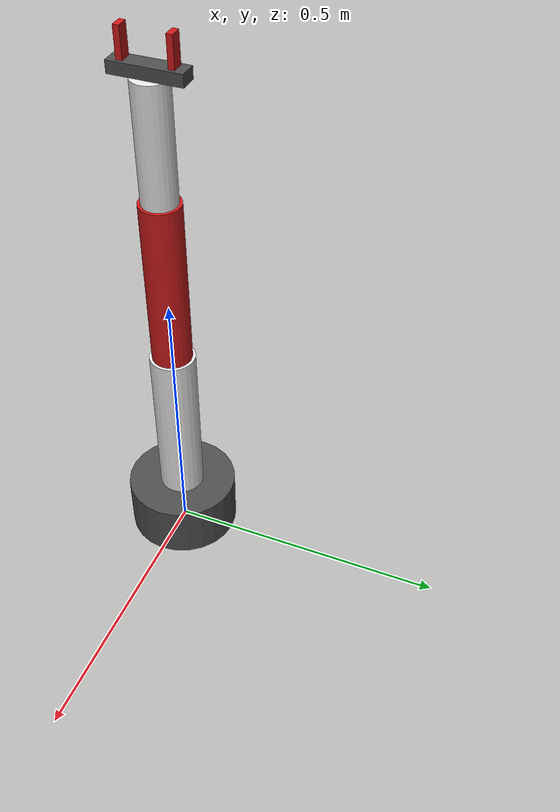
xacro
<?xml version="1.0"?>
<robot xmlns:xacro="http://www.ros.org/wiki/xacro" name="arm_manipulator">
    <xacro:arg name="initial_positions_file" default="initial_positions.yaml" />

    <!-- Import arm_manipulator urdf file -->
    <xacro:include filename="$(find jackrobot)/urdf/roboticarm.urdf" />

    <!-- Import control_xacro -->
    <xacro:include filename="arm_manipulator.ros2_control.xacro" />

    <xacro:arm_manipulator_ros2_control name="FakeSystem" initial_positions_file="$(arg initial_positions_file)"/>
    <gazebo>
    <plugin filename="libgz_ros2_control-system.so" name="gz_ros2_control::GazeboSimROS2ControlPlugin">
      <parameters>$(find jackrobot_moveit_config)/config/ros2_controllers.yaml</parameters>
      <controller_manager_name>controller_manager</controller_manager_name>
    </plugin>
  </gazebo>
</robot>

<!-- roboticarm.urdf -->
<robot name="arm_manipulator">

  <material name="robot_red"><color rgba="0.8 0.1 0.1 1.0"/></material>
  <material name="robot_white"><color rgba="0.9 0.9 0.9 1.0"/></material>
  <material name="robot_grey"><color rgba="0.3 0.3 0.3 1.0"/></material>

  <link name="base_link"/>

  <joint name="base_joint" type="fixed">
    <parent link="base_link"/>
    <child link="arm_base_link"/>
    <origin xyz="0 0 0" rpy="0 0 0"/>
  </joint>

  <link name="arm_base_link">
    <visual>
      <origin xyz="0 0 0.05" rpy="0 0 0"/>
      <geometry><cylinder radius="0.1" length="0.1"/></geometry>
      <material name="robot_grey"/>
    </visual>
    <collision>
      <origin xyz="0 0 0.05" rpy="0 0 0"/>
      <geometry><cylinder radius="0.1" length="0.1"/></geometry>
    </collision>
    <inertial>
      <origin xyz="0 0 0.05" rpy="0 0 0"/>
      <mass value="2.0"/>
      <inertia ixx="0.006667" ixy="0.0" ixz="0.0" iyy="0.006667" iyz="0.0" izz="0.01"/>
    </inertial>
  </link>

  <joint name="arm_0_joint" type="revolute">
    <parent link="arm_base_link"/>
    <child link="link_1"/>
    <origin xyz="0 0 0.1" rpy="0 0 0"/>
    <axis xyz="0 0 1"/>
    <limit lower="-3.1416" upper="3.1416" effort="10.0" velocity="1.5" acceleration="2.0"/>
  </joint>

  <link name="link_1">
    <visual>
      <origin xyz="0 0 0.15" rpy="0 0 0"/>
      <geometry><cylinder radius="0.04" length="0.3"/></geometry>
      <material name="robot_white"/>
    </visual>
    <collision>
      <origin xyz="0 0 0.15" rpy="0 0 0"/>
      <geometry><cylinder radius="0.04" length="0.3"/></geometry>
    </collision>
    <inertial>
      <origin xyz="0 0 0.15" rpy="0 0 0"/>
      <mass value="1.0"/>
      <inertia ixx="0.0079" ixy="0.0" ixz="0.0" iyy="0.0079" iyz="0.0" izz="0.0008"/>
    </inertial>
  </link>

  <joint name="arm_1_joint" type="revolute">
    <parent link="link_1"/>
    <child link="link_2"/>
    <origin xyz="0 0 0.3" rpy="0 0 0"/>
    <axis xyz="0 1 0"/>
    <limit lower="-1.5708" upper="1.5708" effort="10.0" velocity="1.5" acceleration="2.0"/>
  </joint>

  <link name="link_2">
    <visual>
      <origin xyz="0 0 0.15" rpy="0 0 0"/>
      <geometry><cylinder radius="0.035" length="0.3"/></geometry>
      <material name="robot_red"/>
    </visual>
    <collision>
      <origin xyz="0 0 0.15" rpy="0 0 0"/>
      <geometry><cylinder radius="0.035" length="0.3"/></geometry>
    </collision>
    <inertial>
      <origin xyz="0 0 0.15" rpy="0 0 0"/>
      <mass value="0.8"/>
      <inertia ixx="0.00624" ixy="0.0" ixz="0.0" iyy="0.00624" iyz="0.0" izz="0.00049"/>
    </inertial>
  </link>

  <joint name="arm_2_joint" type="revolute">
    <parent link="link_2"/>
    <child link="link_3"/>
    <origin xyz="0 0 0.3" rpy="0 0 0"/>
    <axis xyz="0 1 0"/>
    <limit lower="-2.0944" upper="2.0944" effort="10.0" velocity="1.5" acceleration="2.0"/>
  </joint>

  <link name="link_3">
    <visual>
      <origin xyz="0 0 0.1" rpy="0 0 0"/>
      <geometry><cylinder radius="0.03" length="0.2"/></geometry>
      <material name="robot_white"/>
    </visual>
    <collision>
      <origin xyz="0 0 0.1" rpy="0 0 0"/>
      <geometry><cylinder radius="0.03" length="0.2"/></geometry>
    </collision>
    <inertial>
      <origin xyz="0 0 0.1" rpy="0 0 0"/>
      <mass value="0.5"/>
      <inertia ixx="0.00178" ixy="0.0" ixz="0.0" iyy="0.00178" iyz="0.0" izz="0.00023"/>
    </inertial>
  </link>

  <joint name="gripper_base_joint" type="fixed">
    <parent link="link_3"/>
    <child link="gripper_base_link"/>
    <origin xyz="0 0 0.2" rpy="0 0 0"/>
  </joint>

  <link name="gripper_base_link">
    <visual>
      <origin xyz="0 0 0.01" rpy="0 0 0"/>
      <geometry><box size="0.03 0.12 0.02"/></geometry>
      <material name="robot_grey"/>
    </visual>
    <collision>
      <origin xyz="0 0 0.01" rpy="0 0 0"/>
      <geometry><box size="0.03 0.12 0.02"/></geometry>
    </collision>
    <inertial>
      <origin xyz="0 0 0.01" rpy="0 0 0"/>
      <mass value="0.2"/>
      <inertia ixx="0.000247" ixy="0.0" ixz="0.0" iyy="0.000022" iyz="0.0" izz="0.000255"/>
    </inertial>
  </link>

  <joint name="gripper_1_joint" type="prismatic">
    <parent link="gripper_base_link"/>
    <child link="gripper_finger_1"/>
    <origin xyz="0 0.04 0.02" rpy="0 0 0"/>
    <axis xyz="0 1 0"/>
    <limit lower="-0.03" upper="0.0" effort="5.0" velocity="0.1"/>
  </joint>

  <link name="gripper_finger_1">
    <visual>
      <origin xyz="0 0 0.025" rpy="0 0 0"/>
      <geometry><box size="0.02 0.01 0.05"/></geometry>
      <material name="robot_red"/>
    </visual>
    <collision>
      <origin xyz="0 0 0.025" rpy="0 0 0"/>
      <geometry><box size="0.02 0.01 0.05"/></geometry>
    </collision>
    <inertial>
      <origin xyz="0 0 0.025" rpy="0 0 0"/>
      <mass value="0.05"/>
      <inertia ixx="0.000011" ixy="0.0" ixz="0.0" iyy="0.000012" iyz="0.0" izz="0.000002"/>
    </inertial>
  </link>

  <joint name="gripper_2_joint" type="prismatic">
    <parent link="gripper_base_link"/>
    <child link="gripper_finger_2"/>
    <origin xyz="0 -0.04 0.02" rpy="0 0 0"/>
    <axis xyz="0 -1 0"/>
    <limit lower="-0.03" upper="0.0" effort="5.0" velocity="0.1"/>
  </joint>

  <link name="gripper_finger_2">
    <visual>
      <origin xyz="0 0 0.025" rpy="0 0 0"/>
      <geometry><box size="0.02 0.01 0.05"/></geometry>
      <material name="robot_red"/>
    </visual>
    <collision>
      <origin xyz="0 0 0.025" rpy="0 0 0"/>
      <geometry><box size="0.02 0.01 0.05"/></geometry>
    </collision>
    <inertial>
      <origin xyz="0 0 0.025" rpy="0 0 0"/>
      <mass value="0.05"/>
      <inertia ixx="0.000011" ixy="0.0" ixz="0.0" iyy="0.000012" iyz="0.0" izz="0.000002"/>
    </inertial>
  </link>

</robot>
